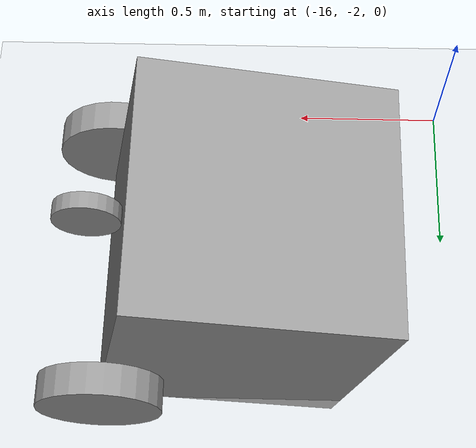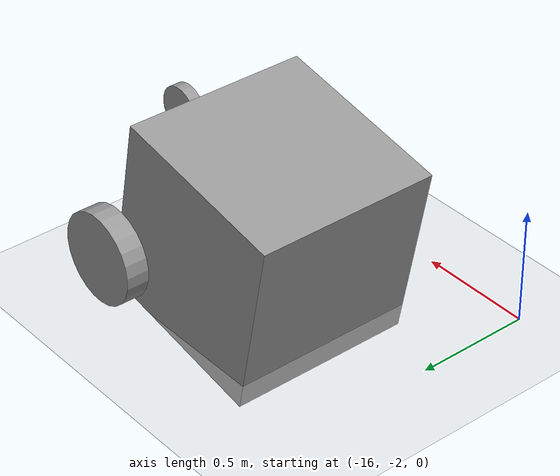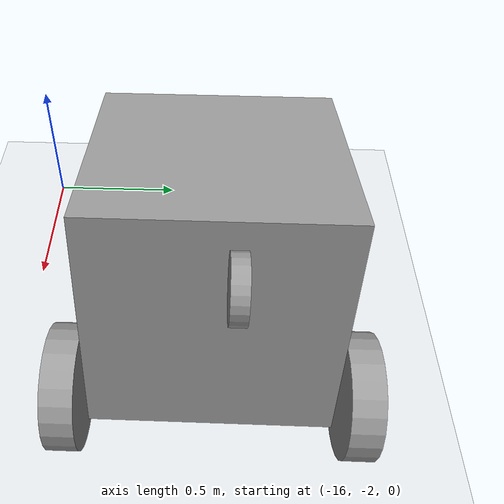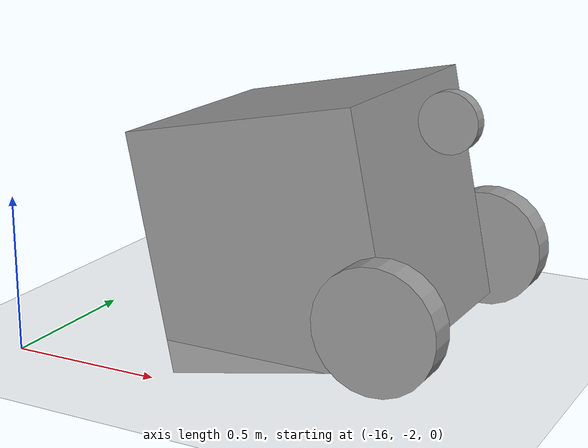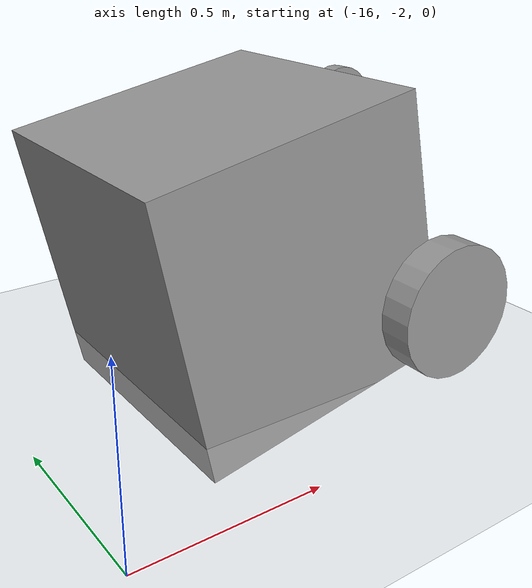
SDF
<sdf version="1.7">
 <world name="default">
  <model name="ground_plane">
   <static>1</static>
   <link name="link">
    <collision name="collision">
     <geometry><plane><normal>0 0 1</normal><size>100 100</size></plane></geometry>
     <surface><friction><ode><mu>100</mu><mu2>50</mu2></ode></friction></surface>
    </collision>
    <visual name="visual">
     <cast_shadows>0</cast_shadows>
     <geometry><plane><normal>0 0 1</normal><size>100 100</size></plane></geometry>
     <material>
      <script><uri>file://media/materials/scripts/gazebo.material</uri><name>Gazebo/Grey</name></script>
     </material>
    </visual>
   </link>
  </model>
  <model name="MYROBOT">
   <link name="link_0">
    <inertial>
     <mass>1</mass>
     <inertia><ixx>0.145833</ixx><ixy>0</ixy><ixz>0</ixz><iyy>0.145833</iyy><iyz>0</iyz><izz>0.125</izz></inertia>
    </inertial>
    <pose>-0.185855 -0.46461 -0.074972 1.57 -0 0</pose>
    <visual name="visual">
     <geometry><cylinder><radius>0.2</radius><length>0.1</length></cylinder></geometry>
     <material>
      <lighting>1</lighting>
      <script><uri>file://media/materials/scripts/gazebo.material</uri><name>Gazebo/Grey</name></script>
      <shader type="pixel"><normal_map>__default__</normal_map></shader>
      <ambient>0.3 0.3 0.3 1</ambient>
      <diffuse>0.7 0.7 0.7 1</diffuse>
      <specular>0.01 0.01 0.01 1</specular>
      <emissive>0 0 0 1</emissive>
     </material>
    </visual>
    <collision name="collision">
     <geometry><cylinder><radius>0.2</radius><length>0.1</length></cylinder></geometry>
     <surface>
      <friction>
       <ode><mu>1</mu><mu2>1</mu2><fdir1>0 0 0</fdir1><slip1>0</slip1><slip2>0</slip2></ode>
       <torsional>
        <coefficient>1</coefficient>
        <patch_radius>0</patch_radius>
        <surface_radius>0</surface_radius>
        <use_patch_radius>1</use_patch_radius>
        <ode><slip>0</slip></ode>
       </torsional>
      </friction>
      <bounce><restitution_coefficient>0</restitution_coefficient><threshold>1e+06</threshold></bounce>
      <contact>
       <collide_without_contact>0</collide_without_contact>
       <collide_without_contact_bitmask>1</collide_without_contact_bitmask>
       <collide_bitmask>1</collide_bitmask>
       <ode>
        <soft_cfm>0</soft_cfm>
        <soft_erp>0.2</soft_erp>
        <kp>1e+13</kp>
        <kd>1</kd>
        <max_vel>0.01</max_vel>
        <min_depth>0</min_depth>
       </ode>
       <bullet>
        <split_impulse>1</split_impulse>
        <split_impulse_penetration_threshold>-0.01</split_impulse_penetration_threshold>
        <soft_cfm>0</soft_cfm>
        <soft_erp>0.2</soft_erp>
        <kp>1e+13</kp>
        <kd>1</kd>
       </bullet>
      </contact>
     </surface>
    </collision>
   </link>
   <link name="link_0_clone">
    <inertial>
     <mass>1</mass>
     <inertia><ixx>0.145833</ixx><ixy>0</ixy><ixz>0</ixz><iyy>0.145833</iyy><iyz>0</iyz><izz>0.125</izz></inertia>
    </inertial>
    <pose>-0.185855 0.43603 -0.074972 1.57 0 3.14</pose>
    <visual name="visual">
     <geometry><cylinder><radius>0.2</radius><length>0.1</length></cylinder></geometry>
     <material>
      <lighting>1</lighting>
      <script><uri>file://media/materials/scripts/gazebo.material</uri><name>Gazebo/Grey</name></script>
      <shader type="pixel"><normal_map>__default__</normal_map></shader>
      <ambient>0.3 0.3 0.3 1</ambient>
      <diffuse>0.7 0.7 0.7 1</diffuse>
      <specular>0.01 0.01 0.01 1</specular>
      <emissive>0 0 0 1</emissive>
     </material>
    </visual>
    <collision name="collision">
     <geometry><cylinder><radius>0.2</radius><length>0.1</length></cylinder></geometry>
     <surface>
      <friction>
       <ode><mu>1</mu><mu2>1</mu2><fdir1>0 0 0</fdir1><slip1>0</slip1><slip2>0</slip2></ode>
       <torsional>
        <coefficient>1</coefficient>
        <patch_radius>0</patch_radius>
        <surface_radius>0</surface_radius>
        <use_patch_radius>1</use_patch_radius>
        <ode><slip>0</slip></ode>
       </torsional>
      </friction>
      <bounce><restitution_coefficient>0</restitution_coefficient><threshold>1e+06</threshold></bounce>
      <contact>
       <collide_without_contact>0</collide_without_contact>
       <collide_without_contact_bitmask>1</collide_without_contact_bitmask>
       <collide_bitmask>1</collide_bitmask>
       <ode>
        <soft_cfm>0</soft_cfm>
        <soft_erp>0.2</soft_erp>
        <kp>1e+13</kp>
        <kd>1</kd>
        <max_vel>0.01</max_vel>
        <min_depth>0</min_depth>
       </ode>
       <bullet>
        <split_impulse>1</split_impulse>
        <split_impulse_penetration_threshold>-0.01</split_impulse_penetration_threshold>
        <soft_cfm>0</soft_cfm>
        <soft_erp>0.2</soft_erp>
        <kp>1e+13</kp>
        <kd>1</kd>
       </bullet>
      </contact>
     </surface>
    </collision>
   </link>
   <link name="link_1">
    <inertial>
     <mass>1</mass>
     <inertia>
      <ixx>0.166667</ixx>
      <ixy>0</ixy>
      <ixz>0</ixz>
      <iyy>0.166667</iyy>
      <iyz>0</iyz>
      <izz>0.166667</izz>
     </inertia>
    </inertial>
    <pose>0.055965 -0.01445 0.325028 0 -0 0</pose>
    <visual name="visual">
     <geometry><box><size>0.8 0.8 0.8</size></box></geometry>
     <material>
      <lighting>1</lighting>
      <script><uri>file://media/materials/scripts/gazebo.material</uri><name>Gazebo/Grey</name></script>
      <shader type="pixel"><normal_map>__default__</normal_map></shader>
      <ambient>0.3 0.3 0.3 1</ambient>
      <diffuse>0.7 0.7 0.7 1</diffuse>
      <specular>0.01 0.01 0.01 1</specular>
      <emissive>0 0 0 1</emissive>
     </material>
    </visual>
    <collision name="collision">
     <geometry><box><size>0.8 0.8 0.8</size></box></geometry>
     <surface>
      <friction>
       <ode><mu>1</mu><mu2>1</mu2><fdir1>0 0 0</fdir1><slip1>0</slip1><slip2>0</slip2></ode>
       <torsional>
        <coefficient>1</coefficient>
        <patch_radius>0</patch_radius>
        <surface_radius>0</surface_radius>
        <use_patch_radius>1</use_patch_radius>
        <ode><slip>0</slip></ode>
       </torsional>
      </friction>
      <bounce><restitution_coefficient>0</restitution_coefficient><threshold>1e+06</threshold></bounce>
      <contact>
       <collide_without_contact>0</collide_without_contact>
       <collide_without_contact_bitmask>1</collide_without_contact_bitmask>
       <collide_bitmask>1</collide_bitmask>
       <ode>
        <soft_cfm>0</soft_cfm>
        <soft_erp>0.2</soft_erp>
        <kp>1e+13</kp>
        <kd>1</kd>
        <max_vel>0.01</max_vel>
        <min_depth>0</min_depth>
       </ode>
       <bullet>
        <split_impulse>1</split_impulse>
        <split_impulse_penetration_threshold>-0.01</split_impulse_penetration_threshold>
        <soft_cfm>0</soft_cfm>
        <soft_erp>0.2</soft_erp>
        <kp>1e+13</kp>
        <kd>1</kd>
       </bullet>
      </contact>
     </surface>
    </collision>
   </link>
   <link name="link_2">
    <inertial>
     <mass>1</mass>
     <inertia><ixx>0.145833</ixx><ixy>0</ixy><ixz>0</ixz><iyy>0.145833</iyy><iyz>0</iyz><izz>0.125</izz></inertia>
    </inertial>
    <pose>0.315741 0.043034 -0.175084 1.56989 1.57 -9.7e-05</pose>
    <visual name="visual">
     <geometry><cylinder><radius>0.1</radius><length>0.05</length></cylinder></geometry>
     <material>
      <lighting>1</lighting>
      <script><uri>file://media/materials/scripts/gazebo.material</uri><name>Gazebo/Grey</name></script>
      <shader type="pixel"><normal_map>__default__</normal_map></shader>
      <ambient>0.3 0.3 0.3 1</ambient>
      <diffuse>0.7 0.7 0.7 1</diffuse>
      <specular>0.01 0.01 0.01 1</specular>
      <emissive>0 0 0 1</emissive>
     </material>
    </visual>
    <collision name="collision">
     <geometry><cylinder><radius>0.1</radius><length>0.05</length></cylinder></geometry>
     <surface>
      <friction>
       <ode><mu>1</mu><mu2>1</mu2><fdir1>0 0 0</fdir1><slip1>0</slip1><slip2>0</slip2></ode>
       <torsional>
        <coefficient>1</coefficient>
        <patch_radius>0</patch_radius>
        <surface_radius>0</surface_radius>
        <use_patch_radius>1</use_patch_radius>
        <ode><slip>0</slip></ode>
       </torsional>
      </friction>
      <bounce><restitution_coefficient>0</restitution_coefficient><threshold>1e+06</threshold></bounce>
      <contact>
       <collide_without_contact>0</collide_without_contact>
       <collide_without_contact_bitmask>1</collide_without_contact_bitmask>
       <collide_bitmask>1</collide_bitmask>
       <ode>
        <soft_cfm>0</soft_cfm>
        <soft_erp>0.2</soft_erp>
        <kp>1e+13</kp>
        <kd>1</kd>
        <max_vel>0.01</max_vel>
        <min_depth>0</min_depth>
       </ode>
       <bullet>
        <split_impulse>1</split_impulse>
        <split_impulse_penetration_threshold>-0.01</split_impulse_penetration_threshold>
        <soft_cfm>0</soft_cfm>
        <soft_erp>0.2</soft_erp>
        <kp>1e+13</kp>
        <kd>1</kd>
       </bullet>
      </contact>
     </surface>
    </collision>
   </link>
   <joint name="link_1_JOINT_0" type="revolute">
    <parent>link_1</parent>
    <child>link_0_clone</child>
    <axis>
     <xyz>0 0 1</xyz>
     <limit>
      <lower>-1.79769e+308</lower>
      <upper>1.79769e+308</upper>
      <effort>-1</effort>
      <velocity>-1</velocity>
     </limit>
     <dynamics>
      <spring_reference>0</spring_reference>
      <spring_stiffness>0</spring_stiffness>
      <damping>0</damping>
      <friction>0</friction>
     </dynamics>
    </axis>
    <physics>
     <ode><limit><cfm>0</cfm><erp>0.2</erp></limit><suspension><cfm>0</cfm><erp>0.2</erp></suspension></ode>
    </physics>
   </joint>
   <joint name="link_1_JOINT_1" type="revolute">
    <parent>link_1</parent>
    <child>link_0</child>
    <axis>
     <xyz>0 0 1</xyz>
     <limit>
      <lower>-1.79769e+308</lower>
      <upper>1.79769e+308</upper>
      <effort>-1</effort>
      <velocity>-1</velocity>
     </limit>
     <dynamics>
      <spring_reference>0</spring_reference>
      <spring_stiffness>0</spring_stiffness>
      <damping>0</damping>
      <friction>0</friction>
     </dynamics>
    </axis>
    <physics>
     <ode><limit><cfm>0</cfm><erp>0.2</erp></limit><suspension><cfm>0</cfm><erp>0.2</erp></suspension></ode>
    </physics>
   </joint>
   <joint name="link_1_JOINT_2" type="revolute">
    <parent>link_1</parent>
    <child>link_2</child>
    <axis>
     <xyz>0 0 1</xyz>
     <limit>
      <lower>-1.79769e+308</lower>
      <upper>1.79769e+308</upper>
      <effort>-1</effort>
      <velocity>-1</velocity>
     </limit>
     <dynamics>
      <spring_reference>0</spring_reference>
      <spring_stiffness>0</spring_stiffness>
      <damping>0</damping>
      <friction>0</friction>
     </dynamics>
    </axis>
    <physics>
     <ode><limit><cfm>0</cfm><erp>0.2</erp></limit><suspension><cfm>0</cfm><erp>0.2</erp></suspension></ode>
    </physics>
   </joint>
   <static>0</static>
   <pose>-14.9687 -1.3052 0.36709 -3.13675 -1.37295 3.13433</pose>
  </model>
 </world>
</sdf>
